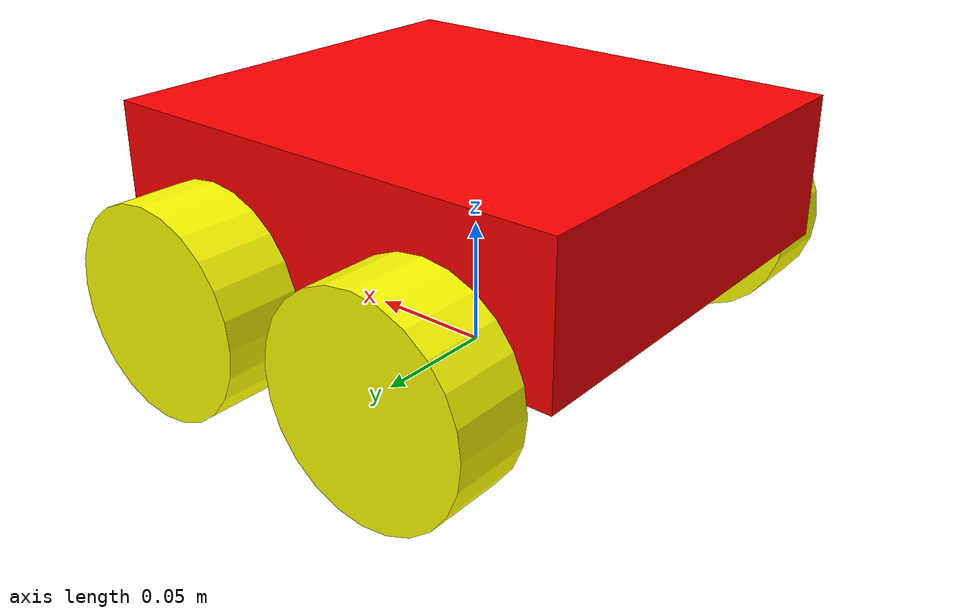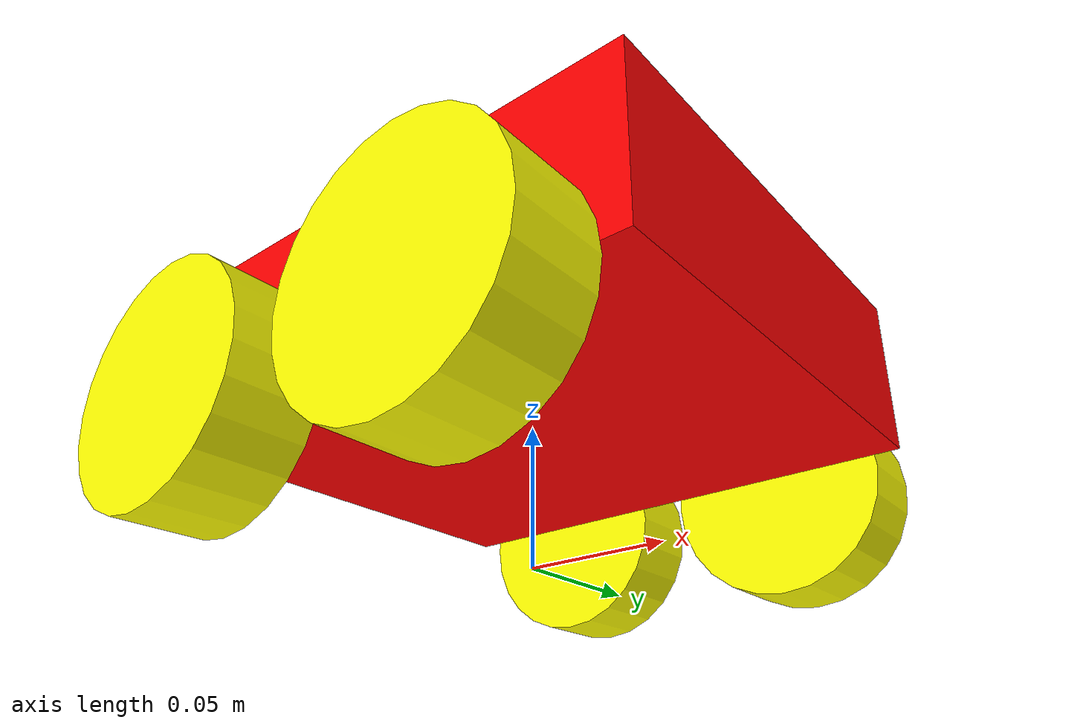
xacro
<?xml version="1.0"?>
<robot name="robot_slam_navigation" xmlns:xacro="http://ros.org/wiki/xacro">

    <xacro:property name="base_length" value="0.194"/>
    <xacro:property name="base_width"  value="0.168"/>
    <xacro:property name="base_height" value="0.056"/>

    <xacro:property name="base_mass"   value="0.663"/>
    <xacro:property name="wheel_mass"  value="0.047"/>

    <xacro:property name="wheel_radius" value="0.04"/>
    <xacro:property name="wheel_length" value="0.03"/>

    <xacro:macro name="box_inertia" params="m x y z">
        <inertia
            ixx="${(1/12.0)*m*(y*y+z*z)}"
            iyy="${(1/12.0)*m*(x*x+z*z)}"
            izz="${(1/12.0)*m*(x*x+y*y)}"
            ixy="0" ixz="0" iyz="0"/>
    </xacro:macro>

    <xacro:macro name="cylinder_inertia" params="m r h">
        <inertia
            ixx="${(1/12.0)*m*(3*r*r + h*h)}"
            iyy="${(1/12.0)*m*(3*r*r + h*h)}"
            izz="${(1/2.0)*m*(r*r)}"
            ixy="0" ixz="0" iyz="0"/>
    </xacro:macro>

    <material name="red"><color rgba="1 0 0 1"/></material>
    <material name="yellow"><color rgba="1 1 0 1"/></material>

    <link name="base_link">
        <visual>
            <geometry>
                <box size="${base_length} ${base_width} ${base_height}"/>
            </geometry>
            <origin xyz="0 0 0" rpy="0 0 0"/>
            <material name="red"/>
        </visual>

        <collision>
            <geometry>
                <box size="${base_length} ${base_width} ${base_height}"/>
            </geometry>
            <origin xyz="0 0 0" rpy="0 0 0"/>
        </collision>

        <inertial>
            <mass value="${base_mass}"/>
            <origin xyz="0 0 0" rpy="0 0 0"/>
            <xacro:box_inertia m="${base_mass}" x="${base_length}" y="${base_width}" z="${base_height}"/>
        </inertial>
    </link>

    <link name="base_footprint"/>

    <joint name="base_joint" type="fixed">
        <parent link="base_footprint"/>
        <child link="base_link"/>
        <origin xyz="0 0 0.072" rpy="0 0 0"/>
    </joint>

    <xacro:macro name="wheel" params="name x y z">

        <link name="${name}_link">
            <visual>
                <geometry>
                    <cylinder radius="${wheel_radius}" length="${wheel_length}"/>
                </geometry>
                <origin rpy="1.5707 0 0" xyz="0 0 0"/>
                <material name="yellow"/>
            </visual>

            <collision>
                <geometry>
                    <cylinder radius="${wheel_radius}" length="${wheel_length}"/>
                </geometry>
                <origin rpy="1.5707 0 0" xyz="0 0 0"/>
            </collision>

            <inertial>
                <mass value="${wheel_mass}"/>
                <origin xyz="0 0 0" rpy="0 0 0"/>
                <xacro:cylinder_inertia m="${wheel_mass}" r="${wheel_radius}" h="${wheel_length}"/>
            </inertial>
        </link>

        <joint name="base_${name}_joint" type="continuous">
            <parent link="base_link"/>
            <child link="${name}_link"/>
            <origin xyz="${x} ${y} ${z - 0.072}" rpy="0 0 0"/>
            <axis xyz="0 1 0"/>
            <limit effort="100" velocity="10"/>
            <dynamics damping="0.1" friction="0.1"/>
        </joint>

    </xacro:macro>

    <xacro:wheel name="right_front_wheel" x="0.0485"  y="-0.099" z="0.04"/>
    <xacro:wheel name="right_rear_wheel"  x="-0.0485" y="-0.099" z="0.04"/>

    <xacro:wheel name="left_front_wheel"  x="0.0485"  y="0.099" z="0.04"/>
    <xacro:wheel name="left_rear_wheel"   x="-0.0485" y="0.099" z="0.04"/>

    <xacro:include filename="$(find robot_sim)/model/robot.gazebo" />

</robot>
